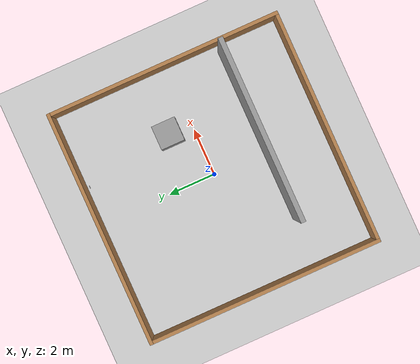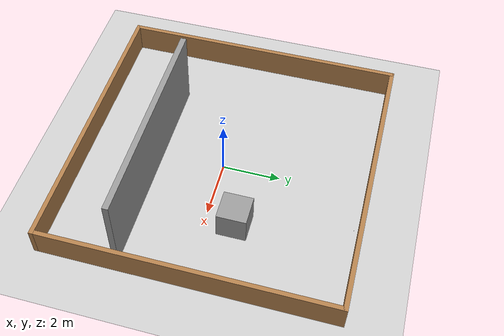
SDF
<sdf version="1.6">
 <world name="default">
  <model name="ground_plane">
   <static>1</static>
   <link name="link">
    <collision name="collision">
     <geometry><plane><normal>0 0 1</normal><size>100 100</size></plane></geometry>
     <surface><friction><ode><mu>100</mu><mu2>50</mu2></ode></friction></surface>
    </collision>
    <visual name="visual">
     <cast_shadows>0</cast_shadows>
     <geometry><plane><normal>0 0 1</normal><size>100 100</size></plane></geometry>
     <material>
      <script><uri>file://media/materials/scripts/gazebo.material</uri><name>Gazebo/Grey</name></script>
     </material>
    </visual>
   </link>
  </model>
  <light name="sun" type="directional">
   <pose>0 0 10 0 -0 0</pose>
   <diffuse>0.8 0.8 0.8 1</diffuse>
   <specular>0.1 0.1 0.1 1</specular>
   <attenuation>
    <range>1000</range>
    <constant>0.9</constant>
    <linear>0.01</linear>
    <quadratic>0.001</quadratic>
   </attenuation>
   <direction>-0.5 0.5 -1</direction>
  </light>
  <gravity>0 0 -9.8</gravity>
  <magnetic_field>6e-06 2.3e-05 -4.2e-05</magnetic_field>
  <atmosphere type="adiabatic"/>
  <physics name="default_physics" default="0" type="ode">
   <max_step_size>0.001</max_step_size>
   <real_time_factor>1</real_time_factor>
   <real_time_update_rate>1000</real_time_update_rate>
  </physics>
  <scene><ambient>0.4 0.4 0.4 1</ambient><background>0.7 0.7 0.7 1</background><shadows>1</shadows></scene>
  <spherical_coordinates>
   <surface_model>EARTH_WGS84</surface_model>
   <latitude_deg>0</latitude_deg>
   <longitude_deg>0</longitude_deg>
   <elevation>0</elevation>
   <heading_deg>0</heading_deg>
  </spherical_coordinates>
  <model name="10x10sq">
   <pose>-0.12221 0.086376 0 0 -0 0</pose>
   <link name="Wall_0">
    <collision name="Wall_0_Collision">
     <geometry><box><size>10 0.15 1</size></box></geometry>
     <pose>0 0 0.5 0 -0 0</pose>
    </collision>
    <visual name="Wall_0_Visual">
     <pose>0 0 0.5 0 -0 0</pose>
     <geometry><box><size>10 0.15 1</size></box></geometry>
     <material>
      <script><uri>file://media/materials/scripts/gazebo.material</uri><name>Gazebo/Wood</name></script>
      <ambient>1 1 1 1</ambient>
     </material>
    </visual>
    <pose>0 4.925 0 0 -0 0</pose>
   </link>
   <link name="Wall_1">
    <collision name="Wall_1_Collision">
     <geometry><box><size>10 0.15 1</size></box></geometry>
     <pose>0 0 0.5 0 -0 0</pose>
    </collision>
    <visual name="Wall_1_Visual">
     <pose>0 0 0.5 0 -0 0</pose>
     <geometry><box><size>10 0.15 1</size></box></geometry>
     <material>
      <script><uri>file://media/materials/scripts/gazebo.material</uri><name>Gazebo/Wood</name></script>
      <ambient>1 1 1 1</ambient>
     </material>
    </visual>
    <pose>4.925 0 0 0 0 -1.5708</pose>
   </link>
   <link name="Wall_3">
    <collision name="Wall_3_Collision">
     <geometry><box><size>10 0.15 1</size></box></geometry>
     <pose>0 0 0.5 0 -0 0</pose>
    </collision>
    <visual name="Wall_3_Visual">
     <pose>0 0 0.5 0 -0 0</pose>
     <geometry><box><size>10 0.15 1</size></box></geometry>
     <material>
      <script><uri>file://media/materials/scripts/gazebo.material</uri><name>Gazebo/Wood</name></script>
      <ambient>1 1 1 1</ambient>
     </material>
    </visual>
    <pose>-4.925 0 0 0 0 -1.5708</pose>
   </link>
   <link name="Wall_5">
    <collision name="Wall_5_Collision">
     <geometry><box><size>10 0.15 1</size></box></geometry>
     <pose>0 0 0.5 0 -0 0</pose>
    </collision>
    <visual name="Wall_5_Visual">
     <pose>0 0 0.5 0 -0 0</pose>
     <geometry><box><size>10 0.15 1</size></box></geometry>
     <material>
      <script><uri>file://media/materials/scripts/gazebo.material</uri><name>Gazebo/Wood</name></script>
      <ambient>1 1 1 1</ambient>
     </material>
    </visual>
    <pose>0 -4.925 0 0 -0 0</pose>
   </link>
   <static>1</static>
  </model>
  <model name="artag">
   <link name="box">
    <gravity>0</gravity>
    <inertial>
     <mass>1000</mass>
     <inertia><ixx>1</ixx><ixy>0</ixy><ixz>0</ixz><iyy>1</iyy><iyz>0</iyz><izz>1</izz></inertia>
    </inertial>
    <visual name="visual">
     <geometry><box><size>0.12 0.000136 0.12</size></box></geometry>
     <material>
      <script>
       <uri>model://artag/materials/scripts</uri>
       <uri>model://artag/materials/textures</uri>
       <name>ar2020</name>
      </script>
      <shader type="vertex"><normal_map>__default__</normal_map></shader>
      <ambient>1 1 1 1</ambient>
      <diffuse>1 1 1 1</diffuse>
      <specular>0 0 0 1</specular>
      <emissive>0 0 0 1</emissive>
      <lighting>0</lighting>
     </material>
    </visual>
   </link>
   <static>0</static>
   <pose>1.60323 4.80258 0.238176 0 -0 0</pose>
  </model>
  <model name="unit_box_0">
   <pose>2.23034 1.00467 0.499995 -1e-05 0 0</pose>
   <link name="link">
    <inertial>
     <mass>1</mass>
     <inertia>
      <ixx>0.166667</ixx>
      <ixy>0</ixy>
      <ixz>0</ixz>
      <iyy>0.166667</iyy>
      <iyz>0</iyz>
      <izz>0.166667</izz>
     </inertia>
    </inertial>
    <collision name="collision"><geometry><box><size>1 1 1</size></box></geometry></collision>
    <visual name="visual">
     <geometry><box><size>1 1 1</size></box></geometry>
     <material>
      <script><name>Gazebo/Grey</name><uri>file://media/materials/scripts/gazebo.material</uri></script>
     </material>
    </visual>
   </link>
  </model>
  <model name="grey_wall">
   <static>1</static>
   <link name="link">
    <pose>0 0 1.4 0 -0 0</pose>
    <collision name="collision"><geometry><box><size>7.5 0.2 2.8</size></box></geometry></collision>
    <visual name="visual">
     <cast_shadows>0</cast_shadows>
     <geometry><box><size>7.5 0.2 2.8</size></box></geometry>
     <material>
      <script>
       <uri>model://grey_wall/materials/scripts</uri>
       <uri>model://grey_wall/materials/textures</uri>
       <name>vrc/grey_wall</name>
      </script>
     </material>
    </visual>
   </link>
   <pose>0.768213 -2.27382 0 0 -0 0</pose>
  </model>
 </world>
</sdf>
